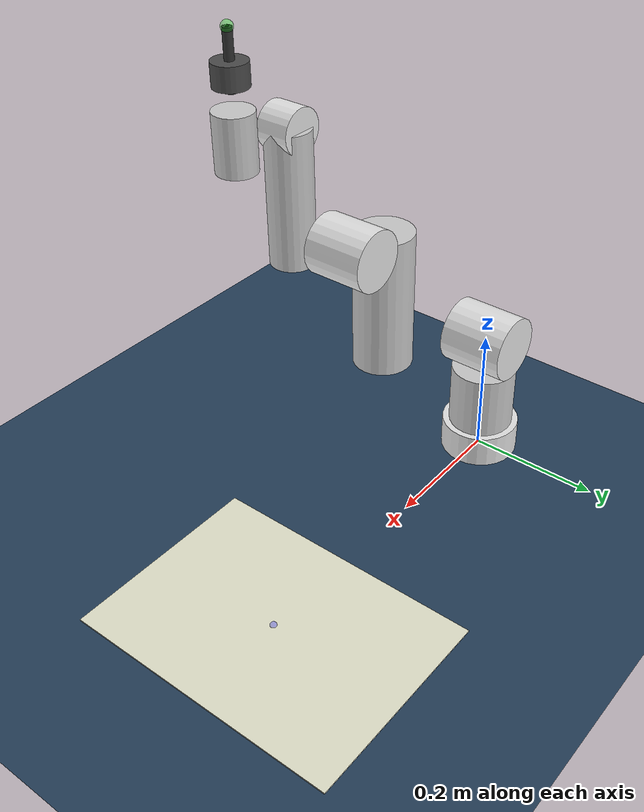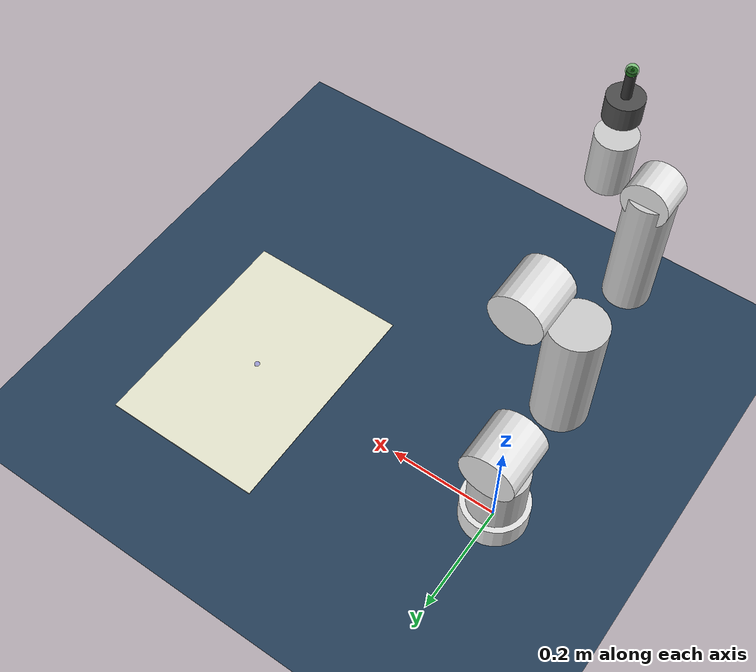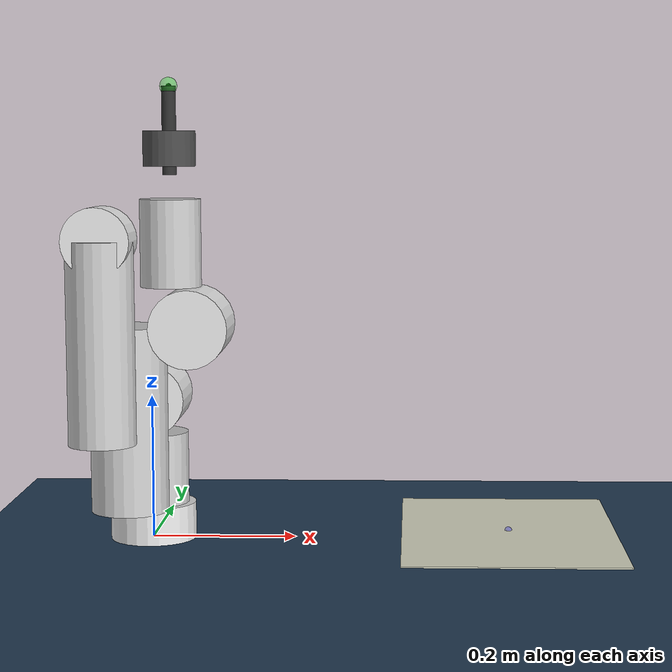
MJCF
<mujoco model="franka_panda_calligraphy">
  <compiler angle="radian" meshdir="../assets" autolimits="true"/>

  <option timestep="0.002" integrator="implicitfast">
    <flag contact="enable" gravity="enable"/>
  </option>

  <visual>
    <headlight diffuse="0.6 0.6 0.6" ambient="0.3 0.3 0.3" specular="0 0 0"/>
    <rgba haze="0.15 0.25 0.35 1"/>
    <!-- 全局视觉设置：相机角度 + 离屏渲染缓冲区大小 -->
    <global azimuth="120" elevation="-20" offwidth="1280" offheight="720"/>
  </visual>

  <asset>
    <texture type="skybox" builtin="gradient" rgb1="0.3 0.5 0.7" rgb2="0 0 0" width="512" height="3072"/>
    <texture type="2d" name="groundplane" builtin="checker" mark="edge" rgb1="0.2 0.3 0.4" rgb2="0.1 0.2 0.3" markrgb="0.8 0.8 0.8" width="300" height="300"/>
    <material name="groundplane" texture="groundplane" texuniform="true" texrepeat="5 5" reflectance="0.2"/>

    <texture name="paper" type="2d" builtin="flat" rgb1="0.95 0.95 0.9" width="512" height="512"/>
    <material name="paper" texture="paper" rgba="0.95 0.95 0.9 1"/>

    <material name="robot" rgba="0.9 0.9 0.9 1"/>
    <material name="black" rgba="0.1 0.1 0.1 1"/>
  </asset>

  <default>
    <joint damping="1" armature="0.1"/>
    <geom condim="3" friction="0.8 0.005 0.0001" solimp="0.95 0.995 0.001" solref="0.002 1"/>
    <motor ctrllimited="true"/>
    <default class="visual">
      <geom contype="0" conaffinity="0" group="2" type="mesh" material="robot"/>
    </default>
    <default class="collision">
      <geom group="3" type="mesh"/>
    </default>
  </default>

  <worldbody>
    <light pos="0 0 3" dir="0 0 -1" directional="true"/>
    <geom name="floor" size="0 0 0.05" type="plane" material="groundplane"/>

    <!-- 俯视相机 (从机器人上方向下看) -->
    <!-- lookat: (0.25, -0.2, 0.3), distance: 1.5, azimuth: 90, elevation: -45 -->
    <camera name="top_view" mode="targetbody" target="panda_link0" pos="0.25 0.8 1.3" euler="1.0 0 1.57" fovy="50"/>

    <!-- Paper surface for calligraphy -->
    <body name="paper" pos="0.5 0 0.01">
      <geom name="paper_surface" type="box" size="0.15 0.21 0.001" material="paper" friction="1.2 0.005 0.0001"/>
      <site name="paper_center" pos="0 0 0.001" size="0.005" rgba="0 0 1 0.3"/>
    </body>

    <!-- Franka Panda Robot -->
    <body name="panda_link0" pos="0 0 0">
      <inertial pos="0 0 0.05" mass="3.0" diaginertia="0.01 0.01 0.01"/>
      <geom name="link0" type="cylinder" size="0.06 0.05" rgba="0.9 0.9 0.9 1"/>

      <body name="panda_link1" pos="0 0 0.1">
        <inertial pos="0 0 0.05" mass="2.7" diaginertia="0.01 0.01 0.01"/>
        <joint name="joint1" type="hinge" pos="0 0 0" axis="0 0 1" range="-2.8973 2.8973" damping="10"/>
        <geom name="link1" type="cylinder" size="0.05 0.05" rgba="0.8 0.8 0.8 1"/>

        <body name="panda_link2" pos="0 0 0.1" euler="1.5708 0 0">
          <inertial pos="0 0 0.05" mass="2.7" diaginertia="0.01 0.01 0.01"/>
          <joint name="joint2" type="hinge" pos="0 0 0" axis="0 0 1" range="-1.7628 1.7628" damping="10"/>
          <geom name="link2" type="cylinder" size="0.05 0.05" rgba="0.9 0.9 0.9 1"/>

          <body name="panda_link3" pos="0 0 0.195" euler="-1.5708 0 0">
            <inertial pos="0 0 0.1" mass="2.5" diaginertia="0.01 0.01 0.01"/>
            <joint name="joint3" type="hinge" pos="0 0 0" axis="0 0 1" range="-2.8973 2.8973" damping="10"/>
            <geom name="link3" type="cylinder" size="0.05 0.12" rgba="0.8 0.8 0.8 1"/>

            <body name="panda_link4" pos="0.0825 0 0.12" euler="1.5708 0 0">
              <inertial pos="0 0 0.05" mass="2.5" diaginertia="0.01 0.01 0.01"/>
              <joint name="joint4" type="hinge" pos="0 0 0" axis="0 0 1" range="-3.0718 -0.0698" damping="10"/>
              <geom name="link4" type="cylinder" size="0.05 0.05" rgba="0.9 0.9 0.9 1"/>

              <body name="panda_link5" pos="-0.0825 0 0.19" euler="-1.5708 0 0">
                <inertial pos="0 0 0.1" mass="1.5" diaginertia="0.008 0.008 0.008"/>
                <joint name="joint5" type="hinge" pos="0 0 0" axis="0 0 1" range="-2.8973 2.8973" damping="8"/>
                <geom name="link5" type="cylinder" size="0.04 0.12" rgba="0.8 0.8 0.8 1"/>

                <body name="panda_link6" pos="0 0 0.12" euler="1.5708 0 0">
                  <inertial pos="0 0 0.03" mass="1.5" diaginertia="0.008 0.008 0.008"/>
                  <joint name="joint6" type="hinge" pos="0 0 0" axis="0 0 1" range="-0.0175 3.7525" damping="8"/>
                  <geom name="link6" type="cylinder" size="0.04 0.03" rgba="0.9 0.9 0.9 1"/>

                  <body name="panda_link7" pos="0.088 0 0.03" euler="-1.5708 0 0">
                    <inertial pos="0 0 0.05" mass="0.5" diaginertia="0.001 0.001 0.001"/>
                    <joint name="joint7" type="hinge" pos="0 0 0" axis="0 0 1" range="-2.8973 2.8973" damping="5"/>
                    <geom name="link7" type="cylinder" size="0.035 0.05" rgba="0.8 0.8 0.8 1"/>

                    <!-- End effector with brush -->
                    <body name="end_effector" pos="0 0 0.107">
                      <inertial pos="0 0 0.02" mass="0.3" diaginertia="0.0005 0.0005 0.0005"/>
                      <geom name="ee_mount" type="cylinder" size="0.03 0.02" rgba="0.3 0.3 0.3 1"/>

                      <!-- Brush holder -->
                      <body name="brush_holder" pos="0 0 0.02">
                        <inertial pos="0 0 0.05" mass="0.1" diaginertia="0.0001 0.0001 0.0001"/>
                        <geom name="holder" type="cylinder" size="0.008 0.05" rgba="0.2 0.2 0.2 1"/>

                        <!-- Brush tip (contact point) -->
                        <body name="brush_tip" pos="0 0 0.05">
                          <geom name="brush" type="sphere" size="0.003" rgba="0 0 0 1"
                                friction="0.9 0.005 0.0001" solimp="0.99 0.999 0.0001" solref="0.001 0.5"/>
                          <site name="brush_contact" pos="0 0 0" size="0.002" rgba="1 0 0 0.5"/>
                        </body>
                      </body>

                      <!-- End effector site for control -->
                      <site name="ee_site" pos="0 0 0.07" size="0.01" rgba="0 1 0 0.3"/>
                    </body>
                  </body>
                </body>
              </body>
            </body>
          </body>
        </body>
      </body>
    </body>
  </worldbody>

  <actuator>
    <motor name="motor1" joint="joint1" gear="100" ctrlrange="-87 87"/>
    <motor name="motor2" joint="joint2" gear="100" ctrlrange="-87 87"/>
    <motor name="motor3" joint="joint3" gear="100" ctrlrange="-87 87"/>
    <motor name="motor4" joint="joint4" gear="100" ctrlrange="-87 87"/>
    <motor name="motor5" joint="joint5" gear="100" ctrlrange="-12 12"/>
    <motor name="motor6" joint="joint6" gear="100" ctrlrange="-12 12"/>
    <motor name="motor7" joint="joint7" gear="100" ctrlrange="-12 12"/>
  </actuator>

  <sensor>
    <framepos name="ee_pos" objtype="site" objname="ee_site"/>
    <framequat name="ee_quat" objtype="site" objname="ee_site"/>
    <framepos name="brush_pos" objtype="site" objname="brush_contact"/>
    <touch name="brush_touch" site="brush_contact"/>
    <force name="brush_force" site="brush_contact"/>
  </sensor>

  <contact>
    <exclude body1="panda_link6" body2="panda_link7"/>
    <exclude body1="panda_link5" body2="panda_link6"/>
  </contact>
</mujoco>
